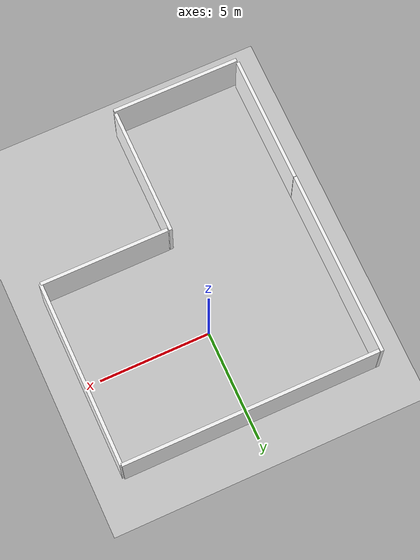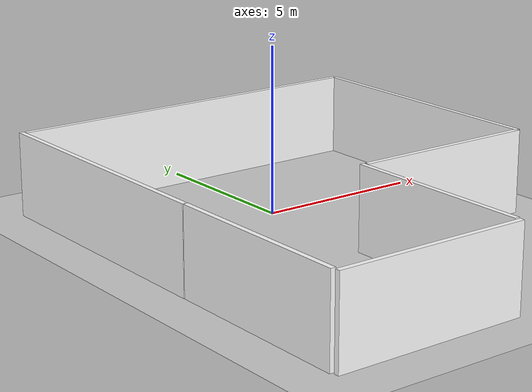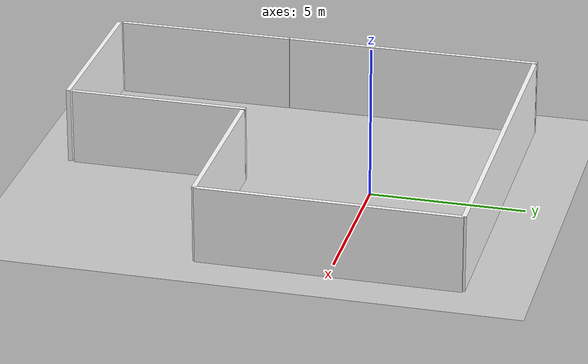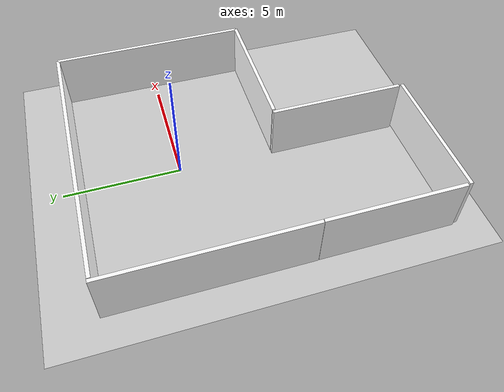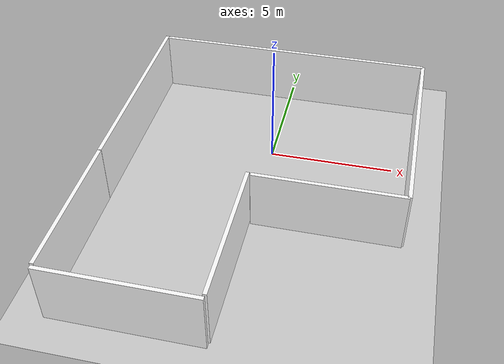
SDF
<sdf version="1.7">
 <world name="default">
  <light name="sun" type="directional">
   <pose>0 0 10 0 -0 0</pose>
   <diffuse>0.8 0.8 0.8 1</diffuse>
   <specular>0.2 0.2 0.2 1</specular>
   <attenuation>
    <range>1000</range>
    <constant>0.9</constant>
    <linear>0.01</linear>
    <quadratic>0.001</quadratic>
   </attenuation>
   <direction>-0.5 0.5 -1</direction>
   <spot><inner_angle>0</inner_angle><outer_angle>0</outer_angle><falloff>0</falloff></spot>
  </light>
  <physics name="1ms" type="ignored">
   <max_step_size>0.01</max_step_size>
   <real_time_factor>1</real_time_factor>
   <real_time_update_rate>100</real_time_update_rate>
  </physics>
  <plugin name="ignition::gazebo::systems::Physics" filename="ignition-gazebo-physics-system"/>
  <plugin name="ignition::gazebo::systems::UserCommands" filename="ignition-gazebo-user-commands-system"/>
  <plugin name="ignition::gazebo::systems::SceneBroadcaster" filename="ignition-gazebo-scene-broadcaster-system"/>
  <plugin name="ignition::gazebo::systems::Contact" filename="ignition-gazebo-contact-system"/>
  <gravity>0 0 -9.8</gravity>
  <magnetic_field>6e-06 2.3e-05 -4.2e-05</magnetic_field>
  <atmosphere type="adiabatic"/>
  <scene><ambient>0.4 0.4 0.4 1</ambient><background>0.7 0.7 0.7 1</background><shadows>true</shadows></scene>
  <model name="ground_plane">
   <static>true</static>
   <link name="link">
    <collision name="collision">
     <geometry><plane><normal>0 0 1</normal><size>100 100</size></plane></geometry>
    </collision>
    <visual name="visual">
     <geometry><plane><normal>0 0 1</normal><size>100 100</size></plane></geometry>
     <material>
      <ambient>0.8 0.8 0.8 1</ambient>
      <diffuse>0.8 0.8 0.8 1</diffuse>
      <specular>0.8 0.8 0.8 1</specular>
     </material>
    </visual>
    <inertial>
     <mass>1</mass>
     <inertia><ixx>1</ixx><ixy>0</ixy><ixz>0</ixz><iyy>1</iyy><iyz>0</iyz><izz>1</izz></inertia>
    </inertial>
   </link>
  </model>
  <model name="office_env_w2">
   <pose>0 4.162 1.25 0 -0 0</pose>
   <link name="Wall_10">
    <visual name="Wall_10_Visual_0">
     <geometry><box><size>11.466 0.15 2.5</size></box></geometry>
     <material>
      <ambient>0.2 0.2 0.2 1</ambient>
      <diffuse>1.0 1.0 1.0 1</diffuse>
      <specular>1.0 1.0 1.0 1</specular>
     </material>
     <meta><layer>0</layer></meta>
    </visual>
    <collision name="Wall_10_Collision_0"><geometry><box><size>11.466 0.15 2.5</size></box></geometry></collision>
   </link>
   <static>1</static>
  </model>
  <model name="office_env_w">
   <pose>5.733 0 1.25 0 -0 1.57</pose>
   <link name="Wall_10">
    <visual name="Wall_10_Visual_0">
     <geometry><box><size>8.324 0.15 2.5</size></box></geometry>
     <material>
      <ambient>0.2 0.2 0.2 1</ambient>
      <diffuse>1.0 1.0 1.0 1</diffuse>
      <specular>1.0 1.0 1.0 1</specular>
     </material>
     <meta><layer>0</layer></meta>
    </visual>
    <collision name="Wall_10_Collision_0"><geometry><box><size>8.324 0.15 2.5</size></box></geometry></collision>
   </link>
   <static>1</static>
  </model>
  <model name="office_env_w3">
   <pose>2.8655 -4.162 1.25 0 -0 0</pose>
   <link name="Wall_10">
    <visual name="Wall_10_Visual_0">
     <geometry><box><size>5.733 0.15 2.5</size></box></geometry>
     <material>
      <ambient>0.2 0.2 0.2 1</ambient>
      <diffuse>1.0 1.0 1.0 1</diffuse>
      <specular>1.0 1.0 1.0 1</specular>
     </material>
     <meta><layer>0</layer></meta>
    </visual>
    <collision name="Wall_10_Collision_0"><geometry><box><size>5.733 0.15 2.5</size></box></geometry></collision>
   </link>
   <static>1</static>
  </model>
  <model name="office_env_w3_clone">
   <pose>-0.116895 -6.96099 1.25 0 -0 1.57</pose>
   <link name="Wall_10">
    <visual name="Wall_10_Visual_0">
     <geometry><box><size>5.733 0.15 2.5</size></box></geometry>
     <material>
      <ambient>0.2 0.2 0.2 1</ambient>
      <diffuse>1.0 1.0 1.0 1</diffuse>
      <specular>1.0 1.0 1.0 1</specular>
     </material>
     <meta><layer>0</layer></meta>
    </visual>
    <collision name="Wall_10_Collision_0"><geometry><box><size>5.733 0.15 2.5</size></box></geometry></collision>
   </link>
   <static>1</static>
  </model>
  <model name="office_env_w_clone">
   <pose>-5.82948 0.079903 1.25 0 -0 1.57</pose>
   <link name="Wall_10">
    <visual name="Wall_10_Visual_0">
     <geometry><box><size>8.324 0.15 2.5</size></box></geometry>
     <material>
      <ambient>0.2 0.2 0.2 1</ambient>
      <diffuse>1.0 1.0 1.0 1</diffuse>
      <specular>1.0 1.0 1.0 1</specular>
     </material>
     <meta><layer>0</layer></meta>
    </visual>
    <collision name="Wall_10_Collision_0"><geometry><box><size>8.324 0.15 2.5</size></box></geometry></collision>
   </link>
   <static>1</static>
  </model>
  <model name="office_env_w3_clone_clone">
   <pose>-5.82704 -6.96526 1.25 0 -0 1.57</pose>
   <link name="Wall_10">
    <visual name="Wall_10_Visual_0">
     <geometry><box><size>5.733 0.15 2.5</size></box></geometry>
     <material>
      <ambient>0.2 0.2 0.2 1</ambient>
      <diffuse>1.0 1.0 1.0 1</diffuse>
      <specular>1.0 1.0 1.0 1</specular>
     </material>
     <meta><layer>0</layer></meta>
    </visual>
    <collision name="Wall_10_Collision_0"><geometry><box><size>5.733 0.15 2.5</size></box></geometry></collision>
   </link>
   <static>1</static>
  </model>
  <model name="office_env_w3_clone_0">
   <pose>-2.96341 -9.9742 1.25 0 -0 0</pose>
   <link name="Wall_10">
    <visual name="Wall_10_Visual_0">
     <geometry><box><size>5.733 0.15 2.5</size></box></geometry>
     <material>
      <ambient>0.2 0.2 0.2 1</ambient>
      <diffuse>1.0 1.0 1.0 1</diffuse>
      <specular>1.0 1.0 1.0 1</specular>
     </material>
     <meta><layer>0</layer></meta>
    </visual>
    <collision name="Wall_10_Collision_0"><geometry><box><size>5.733 0.15 2.5</size></box></geometry></collision>
   </link>
   <static>1</static>
  </model>
  <audio><device>default</device></audio>
 </world>
</sdf>
